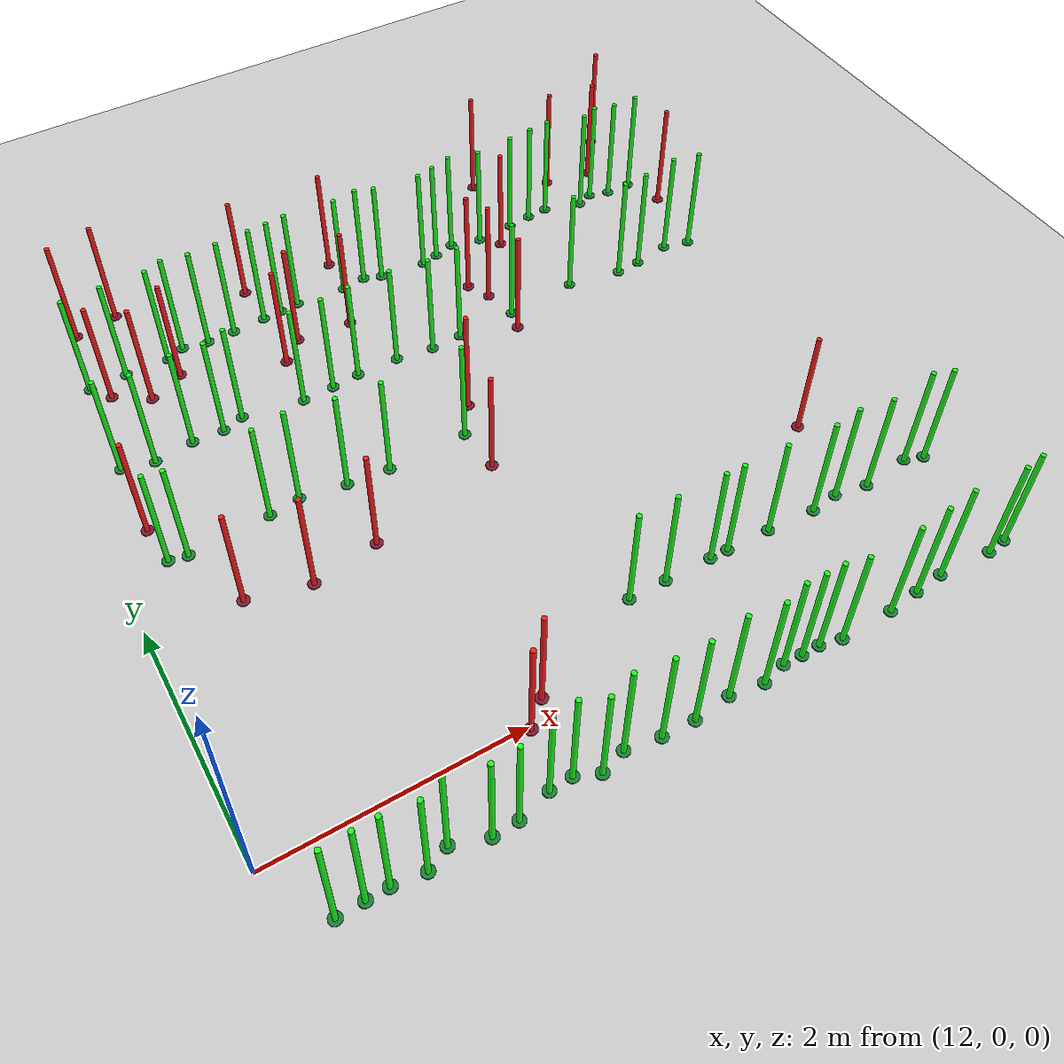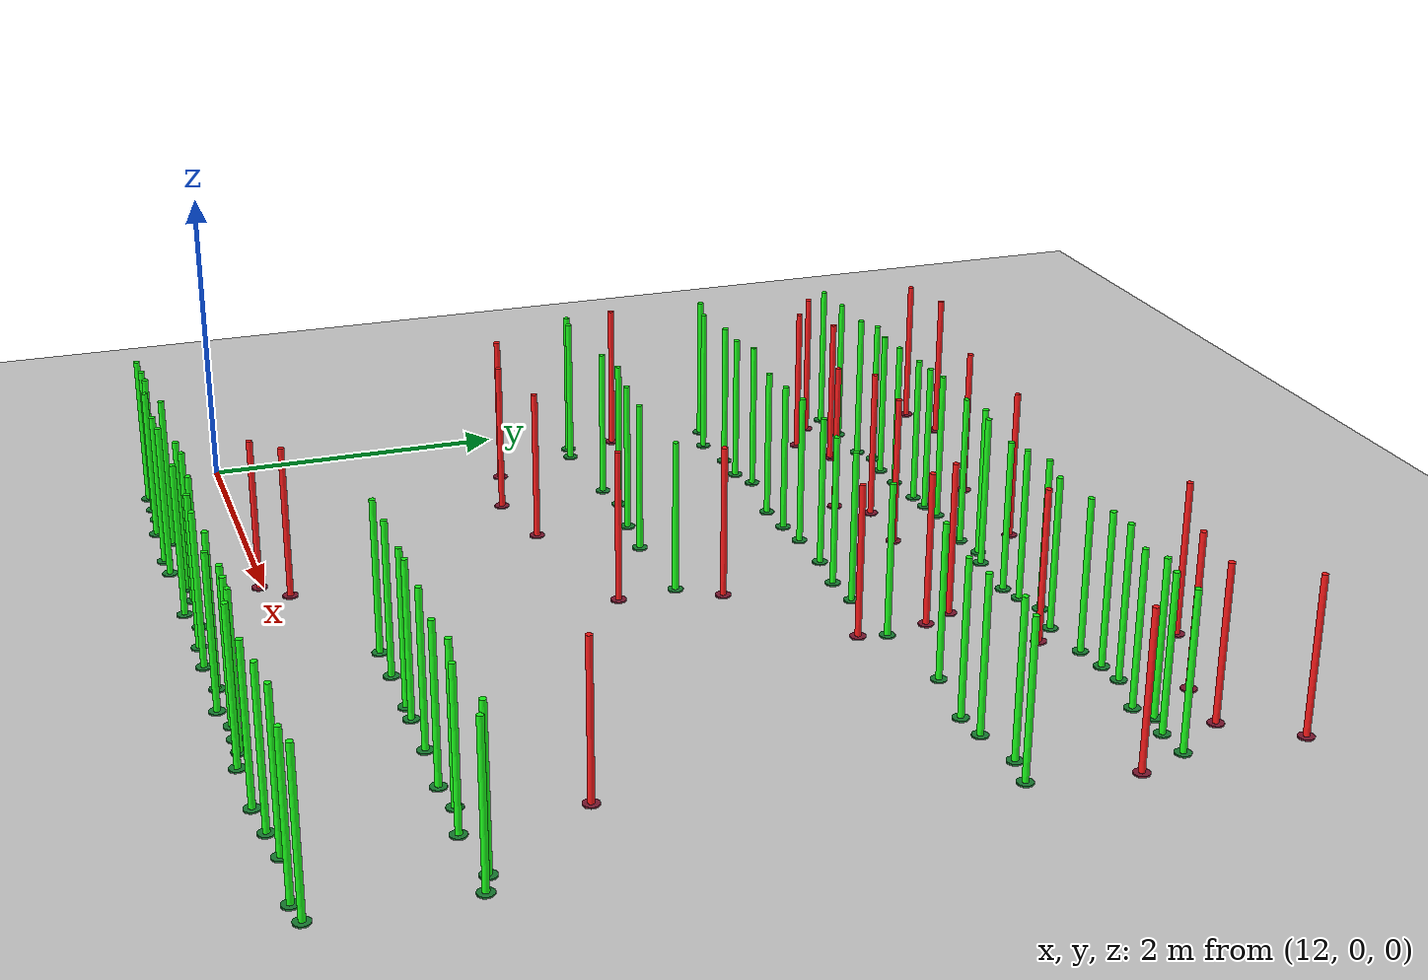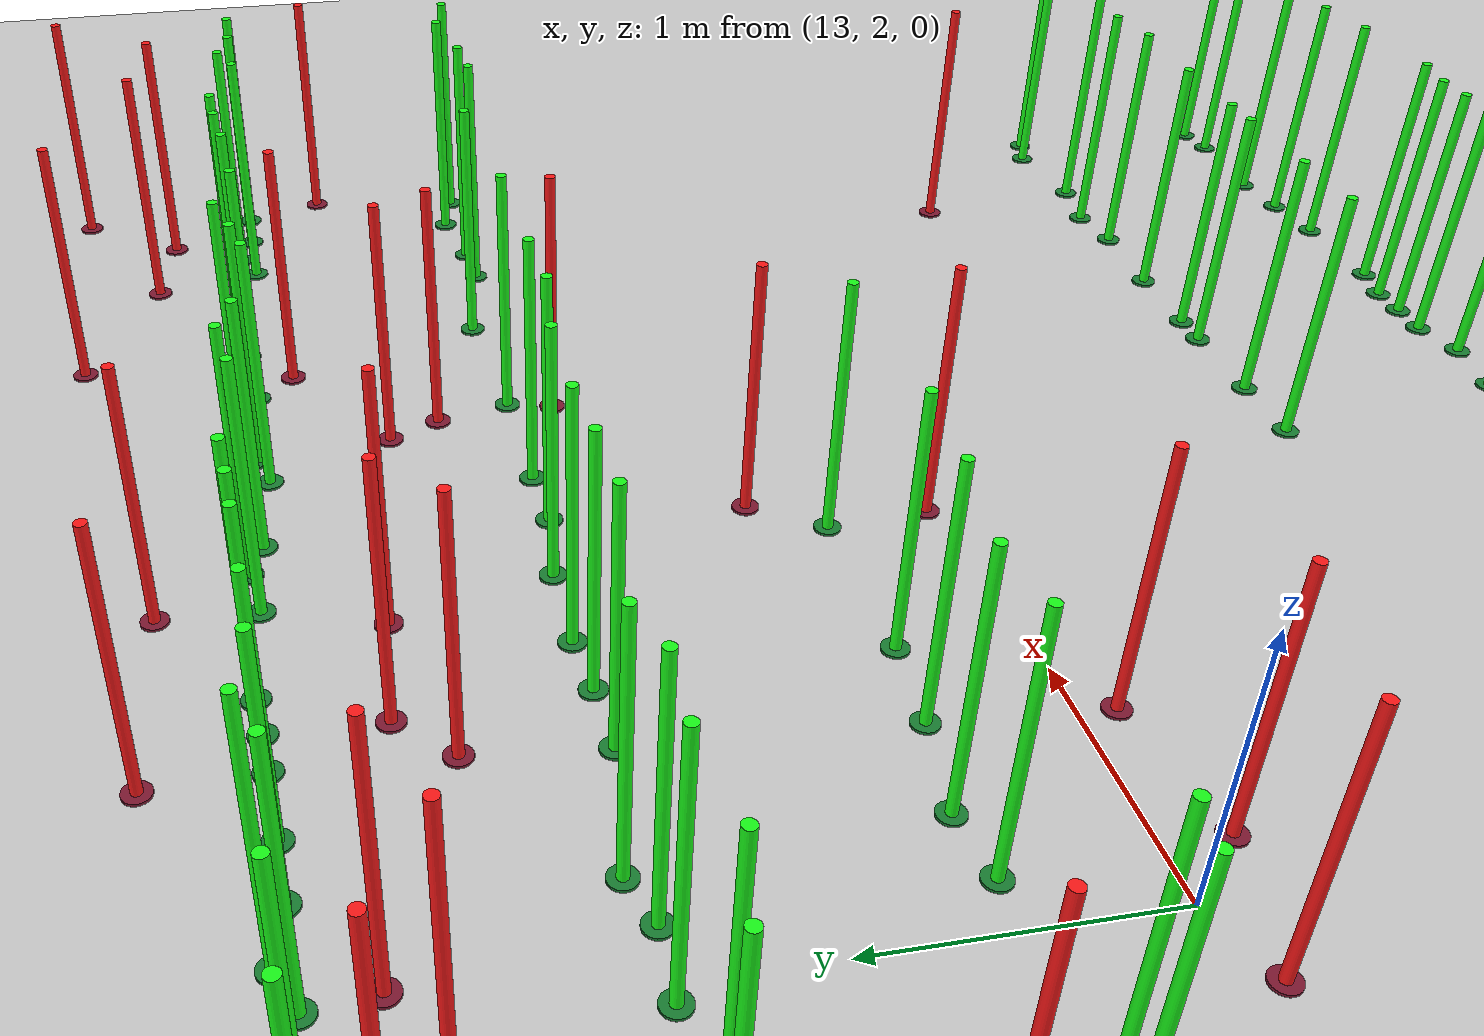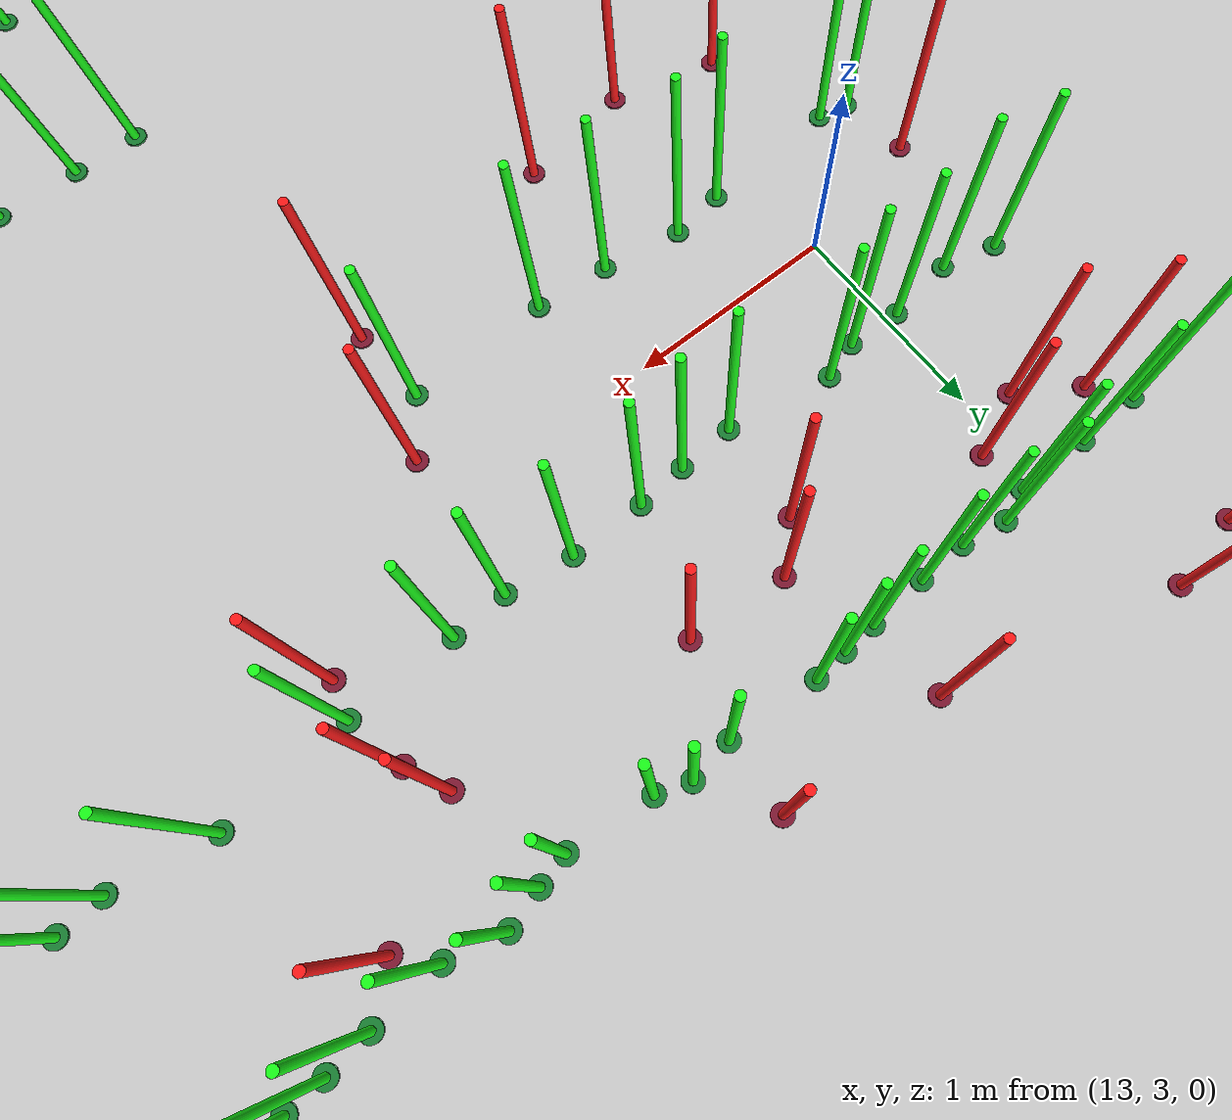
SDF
<sdf version="1.4">
 <world name="default">
  <include><uri>model://ground_plane</uri></include>
  <include><uri>model://sun</uri></include>
  <model name="plantgreen_0_0">
   <include><uri>model://plantgreen</uri></include>
   <pose>15.771452282463617 -0.4798635654363672 0 0 0 0</pose>
  </model>
  <model name="plantgreen_0_2">
   <include><uri>model://plantgreen</uri></include>
   <pose>12.69928691057326 -0.5046608230281625 0 0 0 0</pose>
  </model>
  <model name="plantgreen_0_5">
   <include><uri>model://plantgreen</uri></include>
   <pose>17.236579272398323 -0.4614589611657452 0 0 0 0</pose>
  </model>
  <model name="plantgreen_0_6">
   <include><uri>model://plantgreen</uri></include>
   <pose>16.082458879646154 -0.485008776026175 0 0 0 0</pose>
  </model>
  <model name="plantgreen_0_16">
   <include><uri>model://plantgreen</uri></include>
   <pose>14.990143284919522 -0.5218891645534324 0 0 0 0</pose>
  </model>
  <model name="plantgreen_0_36">
   <include><uri>model://plantgreen</uri></include>
   <pose>12.528919029810002 -0.5064395841047069 0 0 0 0</pose>
  </model>
  <model name="plantgreen_0_39">
   <include><uri>model://plantgreen</uri></include>
   <pose>14.72531504257708 -0.5112591797719483 0 0 0 0</pose>
  </model>
  <model name="plantgreen_0_45">
   <include><uri>model://plantgreen</uri></include>
   <pose>17.861439089133903 -0.4644837492923839 0 0 0 0</pose>
  </model>
  <model name="plantgreen_0_46">
   <include><uri>model://plantgreen</uri></include>
   <pose>16.260194447027704 -0.5252027909259661 0 0 0 0</pose>
  </model>
  <model name="plantgreen_0_54">
   <include><uri>model://plantgreen</uri></include>
   <pose>13.874436285794218 -0.46243453505880733 0 0 0 0</pose>
  </model>
  <model name="plantgreen_0_59">
   <include><uri>model://plantgreen</uri></include>
   <pose>13.60474653128542 -0.5366529361939899 0 0 0 0</pose>
  </model>
  <model name="plantgreen_0_60">
   <include><uri>model://plantgreen</uri></include>
   <pose>14.241330629857178 -0.5315041385534236 0 0 0 0</pose>
  </model>
  <model name="plantgreen_0_61">
   <include><uri>model://plantgreen</uri></include>
   <pose>16.982700190429213 -0.4894531298082995 0 0 0 0</pose>
  </model>
  <model name="plantgreen_0_63">
   <include><uri>model://plantgreen</uri></include>
   <pose>15.295864943875515 -0.489132939033642 0 0 0 0</pose>
  </model>
  <model name="plantgreen_0_70">
   <include><uri>model://plantgreen</uri></include>
   <pose>15.930096625164506 -0.48502698849817405 0 0 0 0</pose>
  </model>
  <model name="plantgreen_0_73">
   <include><uri>model://plantgreen</uri></include>
   <pose>14.448197138103982 -0.466109222374439 0 0 0 0</pose>
  </model>
  <model name="plantgreen_0_75">
   <include><uri>model://plantgreen</uri></include>
   <pose>13.12708946340756 -0.45496257260559814 0 0 0 0</pose>
  </model>
  <model name="plantgreen_0_76">
   <include><uri>model://plantgreen</uri></include>
   <pose>12.946209023520879 -0.538072395345582 0 0 0 0</pose>
  </model>
  <model name="plantgreen_0_80">
   <include><uri>model://plantgreen</uri></include>
   <pose>13.402077766939218 -0.5456033606241405 0 0 0 0</pose>
  </model>
  <model name="plantgreen_0_82">
   <include><uri>model://plantgreen</uri></include>
   <pose>16.7108846145768 -0.5194436042394893 0 0 0 0</pose>
  </model>
  <model name="plantgreen_0_86">
   <include><uri>model://plantgreen</uri></include>
   <pose>15.569653993562078 -0.5312572479324266 0 0 0 0</pose>
  </model>
  <model name="plantgreen_0_89">
   <include><uri>model://plantgreen</uri></include>
   <pose>12.321962460705679 -0.5130714998919206 0 0 0 0</pose>
  </model>
  <model name="plantgreen_0_95">
   <include><uri>model://plantgreen</uri></include>
   <pose>17.691020843010342 -0.49146372303766617 0 0 0 0</pose>
  </model>
  <model name="plantgreen_0_96">
   <include><uri>model://plantgreen</uri></include>
   <pose>14.058181340435 -0.45209521045540035 0 0 0 0</pose>
  </model>
  <model name="plantgreen_1_13">
   <include><uri>model://plantgreen</uri></include>
   <pose>16.389230446996887 0.49524726649525785 0 0 0 0</pose>
  </model>
  <model name="plantgreen_1_14">
   <include><uri>model://plantgreen</uri></include>
   <pose>17.04165282011962 0.5032731831474915 0 0 0 0</pose>
  </model>
  <model name="plantgreen_1_30">
   <include><uri>model://plantgreen</uri></include>
   <pose>16.802252017677475 0.4707803948842918 0 0 0 0</pose>
  </model>
  <model name="plantgreen_1_32">
   <include><uri>model://plantgreen</uri></include>
   <pose>15.459529165454184 0.5084802887421032 0 0 0 0</pose>
  </model>
  <model name="plantgreen_1_37">
   <include><uri>model://plantgreen</uri></include>
   <pose>15.139839621639114 0.5077401604293852 0 0 0 0</pose>
  </model>
  <model name="plantgreen_1_41">
   <include><uri>model://plantgreen</uri></include>
   <pose>17.8940724380084 0.4529335163364386 0 0 0 0</pose>
  </model>
  <model name="plantgreen_1_50">
   <include><uri>model://plantgreen</uri></include>
   <pose>16.014337218914626 0.5021768318532003 0 0 0 0</pose>
  </model>
  <model name="plantgreen_1_56">
   <include><uri>model://plantgreen</uri></include>
   <pose>17.73954711213465 0.5068959998612512 0 0 0 0</pose>
  </model>
  <model name="plantgreen_1_63">
   <include><uri>model://plantgreen</uri></include>
   <pose>17.3166058130424 0.4553953765697654 0 0 0 0</pose>
  </model>
  <model name="plantgreen_1_88">
   <include><uri>model://plantgreen</uri></include>
   <pose>15.861239264291918 0.5048919748568819 0 0 0 0</pose>
  </model>
  <model name="plantgreen_3_6">
   <include><uri>model://plantgreen</uri></include>
   <pose>12.516054432662083 2.472035038852746 0 0 0 0</pose>
  </model>
  <model name="plantgreen_3_13">
   <include><uri>model://plantgreen</uri></include>
   <pose>14.863126356543951 2.4768114048809635 0 0 0 0</pose>
  </model>
  <model name="plantgreen_3_18">
   <include><uri>model://plantgreen</uri></include>
   <pose>14.181944681629394 2.4596527351483655 0 0 0 0</pose>
  </model>
  <model name="plantgreen_3_21">
   <include><uri>model://plantgreen</uri></include>
   <pose>13.82647814747722 2.4875514443696067 0 0 0 0</pose>
  </model>
  <model name="plantgreen_3_70">
   <include><uri>model://plantgreen</uri></include>
   <pose>12.368388211230796 2.499621882661337 0 0 0 0</pose>
  </model>
  <model name="plantgreen_3_76">
   <include><uri>model://plantgreen</uri></include>
   <pose>13.187608984613004 2.5107461401908813 0 0 0 0</pose>
  </model>
  <model name="plantgreen_3_90">
   <include><uri>model://plantgreen</uri></include>
   <pose>13.446862034715357 2.5475999265601432 0 0 0 0</pose>
  </model>
  <model name="plantgreen_4_2">
   <include><uri>model://plantgreen</uri></include>
   <pose>17.765281860069045 3.491041518502171 0 0 0 0</pose>
  </model>
  <model name="plantgreen_4_3">
   <include><uri>model://plantgreen</uri></include>
   <pose>16.519101578827247 3.5496800025183886 0 0 0 0</pose>
  </model>
  <model name="plantgreen_4_11">
   <include><uri>model://plantgreen</uri></include>
   <pose>12.614698769239205 3.4525855074017127 0 0 0 0</pose>
  </model>
  <model name="plantgreen_4_18">
   <include><uri>model://plantgreen</uri></include>
   <pose>17.535778251984578 3.5427295451375094 0 0 0 0</pose>
  </model>
  <model name="plantgreen_4_24">
   <include><uri>model://plantgreen</uri></include>
   <pose>14.166435508033231 3.478583256304082 0 0 0 0</pose>
  </model>
  <model name="plantgreen_4_25">
   <include><uri>model://plantgreen</uri></include>
   <pose>13.385102474702512 3.547378424555899 0 0 0 0</pose>
  </model>
  <model name="plantgreen_4_30">
   <include><uri>model://plantgreen</uri></include>
   <pose>15.365485288960013 3.4769365530173424 0 0 0 0</pose>
  </model>
  <model name="plantgreen_4_41">
   <include><uri>model://plantgreen</uri></include>
   <pose>15.092699181769584 3.4607787044169385 0 0 0 0</pose>
  </model>
  <model name="plantgreen_4_42">
   <include><uri>model://plantgreen</uri></include>
   <pose>17.20978778095961 3.487564890358571 0 0 0 0</pose>
  </model>
  <model name="plantgreen_4_44">
   <include><uri>model://plantgreen</uri></include>
   <pose>15.891005984299495 3.4934456068566044 0 0 0 0</pose>
  </model>
  <model name="plantgreen_4_50">
   <include><uri>model://plantgreen</uri></include>
   <pose>12.941499876556591 3.4983168708658834 0 0 0 0</pose>
  </model>
  <model name="plantgreen_4_60">
   <include><uri>model://plantgreen</uri></include>
   <pose>13.895625296806918 3.464432389011947 0 0 0 0</pose>
  </model>
  <model name="plantgreen_4_61">
   <include><uri>model://plantgreen</uri></include>
   <pose>14.408544249119466 3.501556677287148 0 0 0 0</pose>
  </model>
  <model name="plantgreen_4_64">
   <include><uri>model://plantgreen</uri></include>
   <pose>12.352506600699146 3.5170357464284194 0 0 0 0</pose>
  </model>
  <model name="plantgreen_4_77">
   <include><uri>model://plantgreen</uri></include>
   <pose>14.77013930287338 3.502620587502298 0 0 0 0</pose>
  </model>
  <model name="plantgreen_4_79">
   <include><uri>model://plantgreen</uri></include>
   <pose>16.990419431025185 3.4705397722991322 0 0 0 0</pose>
  </model>
  <model name="plantgreen_4_98">
   <include><uri>model://plantgreen</uri></include>
   <pose>13.203651712042994 3.4871222651351044 0 0 0 0</pose>
  </model>
  <model name="plantgreen_5_10">
   <include><uri>model://plantgreen</uri></include>
   <pose>16.46073693569506 4.507580841307641 0 0 0 0</pose>
  </model>
  <model name="plantgreen_5_15">
   <include><uri>model://plantgreen</uri></include>
   <pose>14.963275790296823 4.543823145258707 0 0 0 0</pose>
  </model>
  <model name="plantgreen_5_17">
   <include><uri>model://plantgreen</uri></include>
   <pose>13.701832681172776 4.497808564373971 0 0 0 0</pose>
  </model>
  <model name="plantgreen_5_26">
   <include><uri>model://plantgreen</uri></include>
   <pose>13.46283184522646 4.490276387091329 0 0 0 0</pose>
  </model>
  <model name="plantgreen_5_28">
   <include><uri>model://plantgreen</uri></include>
   <pose>12.72633395422369 4.471802100399582 0 0 0 0</pose>
  </model>
  <model name="plantgreen_5_30">
   <include><uri>model://plantgreen</uri></include>
   <pose>12.411055232393473 4.460120089116636 0 0 0 0</pose>
  </model>
  <model name="plantgreen_5_38">
   <include><uri>model://plantgreen</uri></include>
   <pose>15.116852268890298 4.490483302859394 0 0 0 0</pose>
  </model>
  <model name="plantgreen_5_45">
   <include><uri>model://plantgreen</uri></include>
   <pose>14.151635866118761 4.525997691942753 0 0 0 0</pose>
  </model>
  <model name="plantgreen_5_51">
   <include><uri>model://plantgreen</uri></include>
   <pose>16.12020113156377 4.479006734845467 0 0 0 0</pose>
  </model>
  <model name="plantgreen_5_53">
   <include><uri>model://plantgreen</uri></include>
   <pose>15.856917179301218 4.544762774276116 0 0 0 0</pose>
  </model>
  <model name="plantgreen_5_56">
   <include><uri>model://plantgreen</uri></include>
   <pose>17.342194157949486 4.5117405144359815 0 0 0 0</pose>
  </model>
  <model name="plantgreen_5_59">
   <include><uri>model://plantgreen</uri></include>
   <pose>15.51929709435389 4.452601191319487 0 0 0 0</pose>
  </model>
  <model name="plantgreen_5_63">
   <include><uri>model://plantgreen</uri></include>
   <pose>14.752444858823393 4.510738237811206 0 0 0 0</pose>
  </model>
  <model name="plantgreen_5_64">
   <include><uri>model://plantgreen</uri></include>
   <pose>16.863555832085762 4.547493326558926 0 0 0 0</pose>
  </model>
  <model name="plantgreen_5_72">
   <include><uri>model://plantgreen</uri></include>
   <pose>14.317080974426919 4.541282858438632 0 0 0 0</pose>
  </model>
  <model name="plantgreen_5_83">
   <include><uri>model://plantgreen</uri></include>
   <pose>17.750380590688543 4.465391409827698 0 0 0 0</pose>
  </model>
  <model name="plantgreen_5_85">
   <include><uri>model://plantgreen</uri></include>
   <pose>13.09282459076408 4.4686748460979455 0 0 0 0</pose>
  </model>
  <model name="plantgreen_5_88">
   <include><uri>model://plantgreen</uri></include>
   <pose>15.671450657295678 4.489095424893194 0 0 0 0</pose>
  </model>
  <model name="plantgreen_5_94">
   <include><uri>model://plantgreen</uri></include>
   <pose>13.987173255863933 4.51495797547925 0 0 0 0</pose>
  </model>
  <model name="plantgreen_5_95">
   <include><uri>model://plantgreen</uri></include>
   <pose>17.521796395473142 4.464416595940327 0 0 0 0</pose>
  </model>
  <model name="plantgreen_5_96">
   <include><uri>model://plantgreen</uri></include>
   <pose>16.677289498913105 4.534374258750452 0 0 0 0</pose>
  </model>
  <model name="plantgreen_5_97">
   <include><uri>model://plantgreen</uri></include>
   <pose>17.197488733673534 4.453433123553157 0 0 0 0</pose>
  </model>
  <model name="plantgreen_5_99">
   <include><uri>model://plantgreen</uri></include>
   <pose>13.244946279815675 4.5284884449609155 0 0 0 0</pose>
  </model>
  <model name="plantred_2">
   <include><uri>model://plantred</uri></include>
   <pose>17.508146261784095 4.813836892627147 0 0 0 0</pose>
  </model>
  <model name="plantred_3">
   <include><uri>model://plantred</uri></include>
   <pose>12.329641486952593 2.8431328733843566 0 0 0 0</pose>
  </model>
  <model name="plantred_11">
   <include><uri>model://plantred</uri></include>
   <pose>12.505426844703358 5.113957067409709 0 0 0 0</pose>
  </model>
  <model name="plantred_29">
   <include><uri>model://plantred</uri></include>
   <pose>17.87416860576612 4.139171370844309 0 0 0 0</pose>
  </model>
  <model name="plantred_31">
   <include><uri>model://plantred</uri></include>
   <pose>13.997244319471724 -0.02515452885603986 0 0 0 0</pose>
  </model>
  <model name="plantred_32">
   <include><uri>model://plantred</uri></include>
   <pose>13.776328895966799 1.8699106765186622 0 0 0 0</pose>
  </model>
  <model name="plantred_35">
   <include><uri>model://plantred</uri></include>
   <pose>12.823156545273307 4.103888238710208 0 0 0 0</pose>
  </model>
  <model name="plantred_36">
   <include><uri>model://plantred</uri></include>
   <pose>13.118514838850926 4.244589900166898 0 0 0 0</pose>
  </model>
  <model name="plantred_37">
   <include><uri>model://plantred</uri></include>
   <pose>14.614552145564533 4.091872004999263 0 0 0 0</pose>
  </model>
  <model name="plantred_38">
   <include><uri>model://plantred</uri></include>
   <pose>15.039303967412735 2.7364030811972047 0 0 0 0</pose>
  </model>
  <model name="plantred_40">
   <include><uri>model://plantred</uri></include>
   <pose>15.848032993289479 3.3176298423319635 0 0 0 0</pose>
  </model>
  <model name="plantred_48">
   <include><uri>model://plantred</uri></include>
   <pose>13.950832889242745 3.9407000554853147 0 0 0 0</pose>
  </model>
  <model name="plantred_49">
   <include><uri>model://plantred</uri></include>
   <pose>14.13936937421437 4.128512974405448 0 0 0 0</pose>
  </model>
  <model name="plantred_51">
   <include><uri>model://plantred</uri></include>
   <pose>16.437010047189847 5.175609430084206 0 0 0 0</pose>
  </model>
  <model name="plantred_52">
   <include><uri>model://plantred</uri></include>
   <pose>13.221247061052818 1.7744117482234063 0 0 0 0</pose>
  </model>
  <model name="plantred_55">
   <include><uri>model://plantred</uri></include>
   <pose>12.717355189756299 1.8969577109624691 0 0 0 0</pose>
  </model>
  <model name="plantred_56">
   <include><uri>model://plantred</uri></include>
   <pose>15.726837934008465 3.97992739046796 0 0 0 0</pose>
  </model>
  <model name="plantred_57">
   <include><uri>model://plantred</uri></include>
   <pose>17.233015095768444 1.2011651571630553 0 0 0 0</pose>
  </model>
  <model name="plantred_58">
   <include><uri>model://plantred</uri></include>
   <pose>15.822920119793766 3.782124785907147 0 0 0 0</pose>
  </model>
  <model name="plantred_62">
   <include><uri>model://plantred</uri></include>
   <pose>14.894468323801831 2.0896359571704295 0 0 0 0</pose>
  </model>
  <model name="plantred_72">
   <include><uri>model://plantred</uri></include>
   <pose>17.090723386100333 4.882564816871163 0 0 0 0</pose>
  </model>
  <model name="plantred_73">
   <include><uri>model://plantred</uri></include>
   <pose>13.971487946158298 4.903063704823502 0 0 0 0</pose>
  </model>
  <model name="plantred_77">
   <include><uri>model://plantred</uri></include>
   <pose>16.259503712945126 4.331571626738757 0 0 0 0</pose>
  </model>
  <model name="plantred_81">
   <include><uri>model://plantred</uri></include>
   <pose>14.178200047201178 0.14048697653787168 0 0 0 0</pose>
  </model>
  <model name="plantred_89">
   <include><uri>model://plantred</uri></include>
   <pose>14.771341994760062 4.865289098241759 0 0 0 0</pose>
  </model>
  <model name="plantred_92">
   <include><uri>model://plantred</uri></include>
   <pose>12.539870324419994 4.286817050694986 0 0 0 0</pose>
  </model>
  <model name="plantred_94">
   <include><uri>model://plantred</uri></include>
   <pose>17.80515435117882 5.215338886818248 0 0 0 0</pose>
  </model>
  <model name="plantred_99">
   <include><uri>model://plantred</uri></include>
   <pose>12.875325813679606 5.18885472263588 0 0 0 0</pose>
  </model>
 </world>
</sdf>
